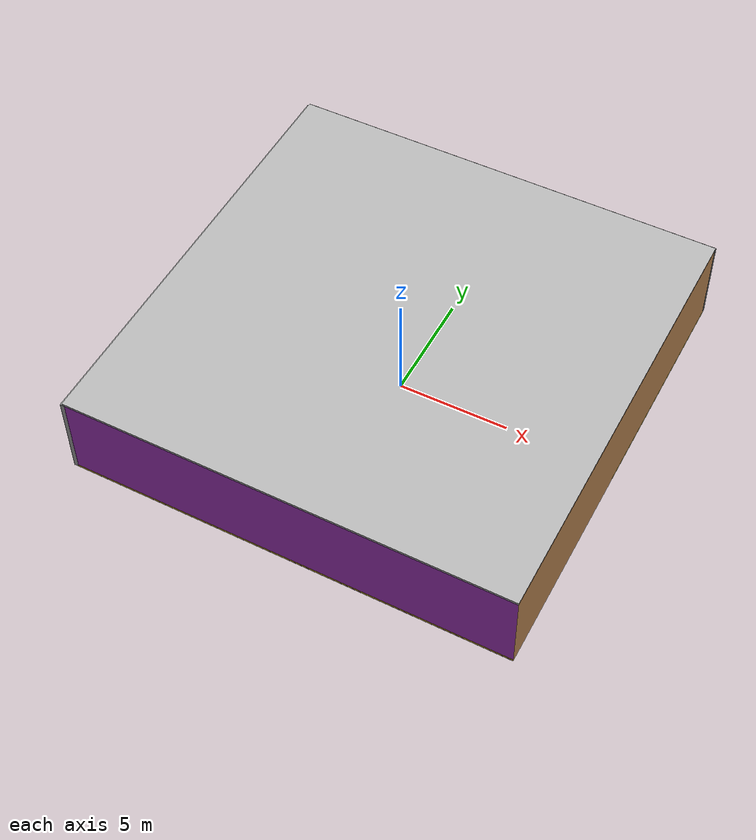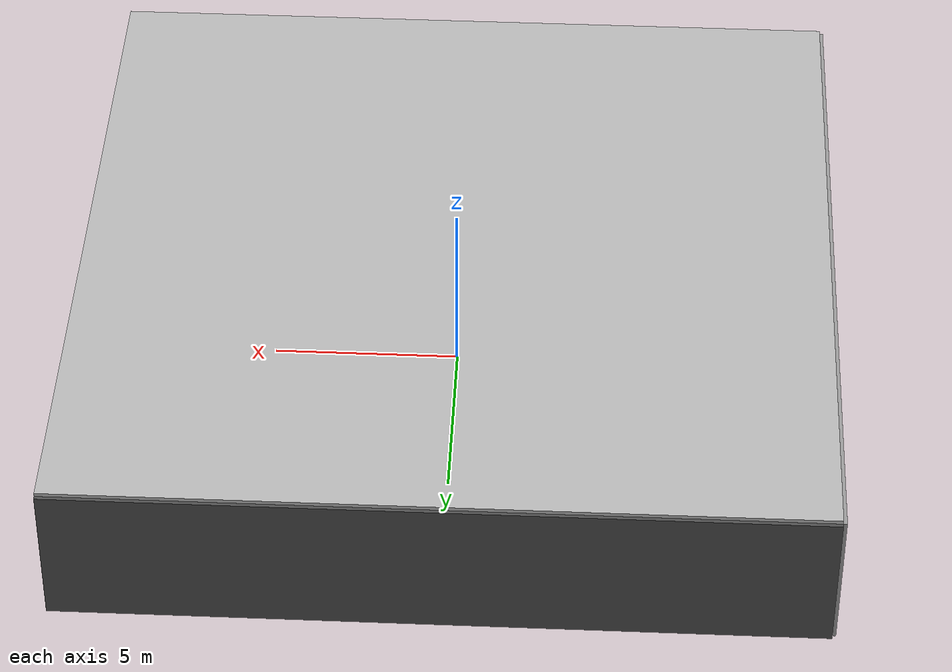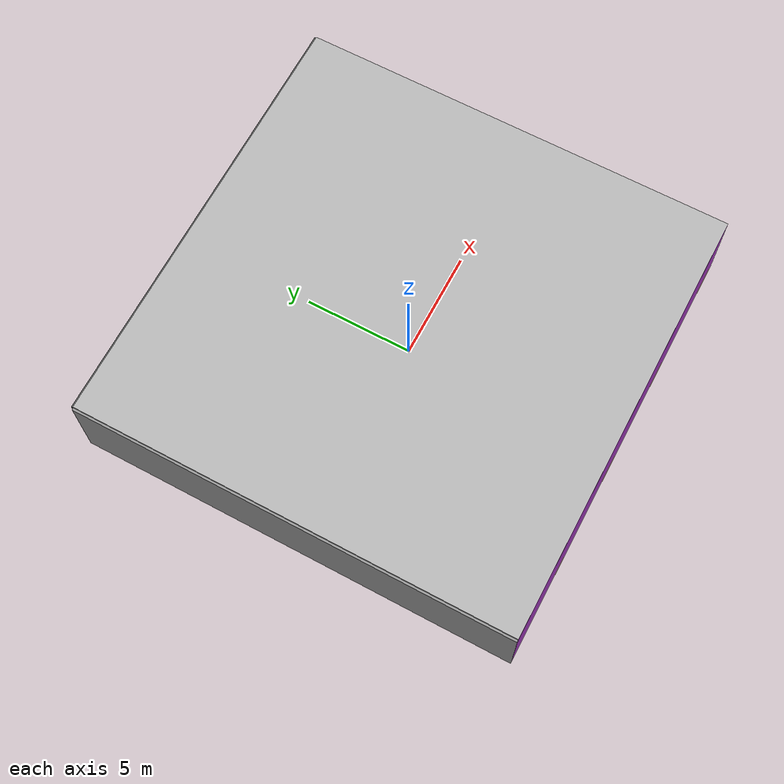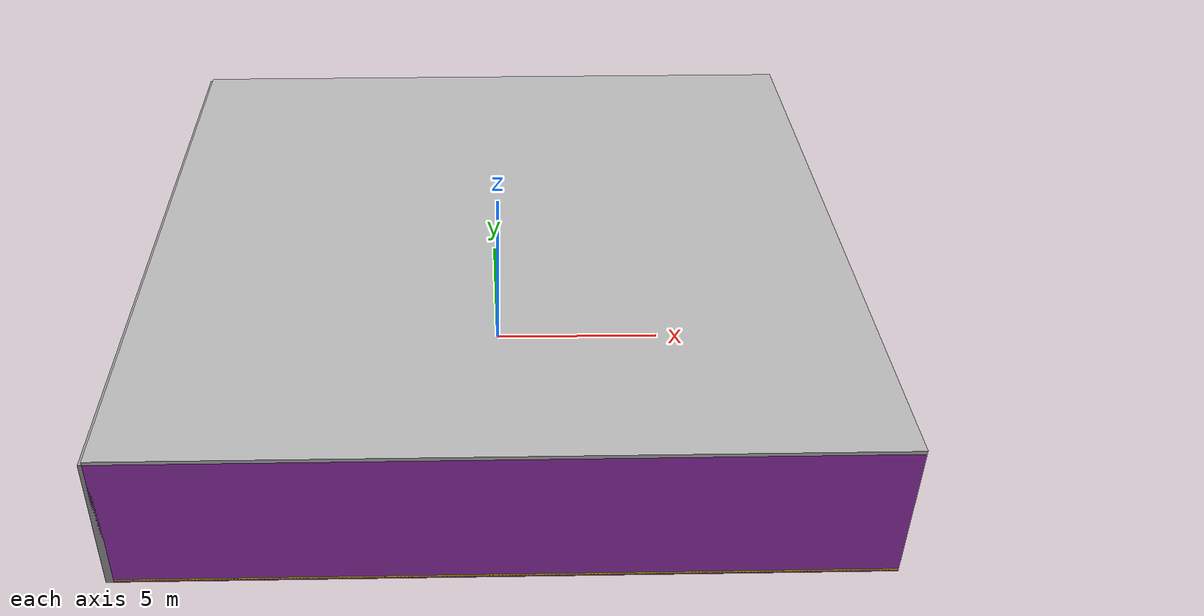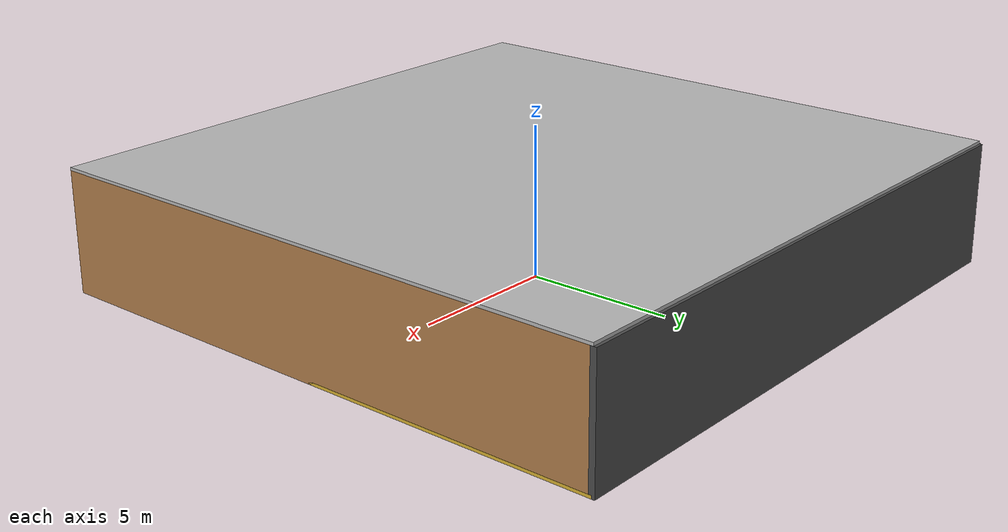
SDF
<sdf version="1.4">
 <world name="default">
  <physics type="ode">
   <max_step_size>0.001</max_step_size>
   <real_time_factor>1</real_time_factor>
   <real_time_update_rate>1000</real_time_update_rate>
   <gravity>0 0 -9.8</gravity>
  </physics>
  <scene><ambient>0.4 0.4 0.4 1</ambient><background>0.7 0.7 0.7 1</background><shadows>1</shadows></scene>
  <model name="Surrounding">
   <static>1</static>
   <link name="Ceiling">
    <collision name="Ceiling_Collision"><geometry><box><size>20 20 0.1</size></box></geometry></collision>
    <visual name="Ceiling_Visual">
     <geometry><box><size>20 20 0.1</size></box></geometry>
     <material>
      <script><uri>file://media/materials/scripts/gazebo.material</uri><name>Gazebo/LightOn</name></script>
     </material>
    </visual>
    <pose>0 0 4.05 0 0 0</pose>
   </link>
   <link name="Wall_South">
    <collision name="Wall_South_Collision">
     <geometry><box><size>20 0 4</size></box></geometry>
     <pose>0 0 2 0 -0 0</pose>
    </collision>
    <visual name="Wall_South_Visual">
     <pose>0 0 2 0 -0 0</pose>
     <geometry><box><size>20 0 4</size></box></geometry>
     <material>
      <script><uri>file://media/materials/scripts/gazebo.material</uri><name>Gazebo/PurpleGlow</name></script>
     </material>
    </visual>
    <velocity_decay><linear>0</linear><angular>0</angular></velocity_decay>
    <pose>0 -10 0 0 -0 0</pose>
   </link>
   <link name="Wall_East">
    <collision name="Wall_21_Collision">
     <geometry><box><size>20 0 4</size></box></geometry>
     <pose>0 0 2 0 -0 0</pose>
    </collision>
    <visual name="Wall_21_Visual">
     <pose>0 0 2 0 -0 0</pose>
     <geometry><box><size>20 0 4</size></box></geometry>
     <material>
      <script><uri>file://media/materials/scripts/gazebo.material</uri><name>Gazebo/WoodFloor</name></script>
     </material>
    </visual>
    <velocity_decay><linear>0</linear><angular>0</angular></velocity_decay>
    <pose>10 0 0 0 -0 1.5708</pose>
   </link>
   <link name="Wall_North">
    <collision name="Wall_22_Collision">
     <geometry><box><size>20 0.2 4</size></box></geometry>
     <pose>0 0 2 0 -0 0</pose>
    </collision>
    <visual name="Wall_22_Visual">
     <pose>0 0 2 0 -0 0</pose>
     <geometry><box><size>20 0.2 4</size></box></geometry>
     <material>
      <script><uri>file://media/materials/scripts/gazebo.material</uri><name>Gazebo/Road</name></script>
     </material>
    </visual>
    <velocity_decay><linear>0</linear><angular>0</angular></velocity_decay>
    <pose>0 10 0 0 -0 0</pose>
   </link>
   <link name="Wall_West">
    <collision name="Wall_23_Collision">
     <geometry><box><size>20 0.2 4</size></box></geometry>
     <pose>0 0 2 0 -0 0</pose>
    </collision>
    <visual name="Wall_23_Visual">
     <pose>0 0 2 0 -0 0</pose>
     <geometry><box><size>20 0.2 4</size></box></geometry>
     <material>
      <script><uri>file://media/materials/scripts/gazebo.material</uri><name>Gazebo/Grey</name></script>
     </material>
    </visual>
    <velocity_decay><linear>0</linear><angular>0</angular></velocity_decay>
    <pose>-10 0 0 0 0 -1.5708</pose>
   </link>
   <link name="Ground_link">
    <collision name="collision">
     <pose>0 0 .05 0 -0 0</pose>
     <geometry><box><size>20 20 0.1</size></box></geometry>
    </collision>
    <visual name="visual">
     <pose>0 0 .05 0 -0 0</pose>
     <geometry><box><size>20 20 0.1</size></box></geometry>
     <material>
      <script><uri>file://media/materials/scripts/gazebo.material</uri><name>Gazebo/Gold</name></script>
     </material>
    </visual>
   </link>
   <static>1</static>
  </model>
  <spherical_coordinates>
   <surface_model>EARTH_WGS84</surface_model>
   <latitude_deg>0</latitude_deg>
   <longitude_deg>0</longitude_deg>
   <elevation>0</elevation>
   <heading_deg>0</heading_deg>
  </spherical_coordinates>
  <light name="lightball_0" type="diffuse">
   <diffuse>0.8 0.8 0.8 1</diffuse>
   <specular>0.2 0.2 0.2 1</specular>
   <attenuation>
    <range>100</range>
    <constant>0.7</constant>
    <linear>0.01</linear>
    <quadratic>0.001</quadratic>
   </attenuation>
   <direction>-0.5 0.1 -0.9</direction>
   <pose>-2.57076439839 -0.0477192972934 1.4713828222 0 0 0</pose>
  </light>
  <light name="lightball_1" type="diffuse">
   <diffuse>0.8 0.8 0.8 1</diffuse>
   <specular>0.2 0.2 0.2 1</specular>
   <attenuation>
    <range>100</range>
    <constant>0.7</constant>
    <linear>0.01</linear>
    <quadratic>0.001</quadratic>
   </attenuation>
   <direction>-0.5 0.1 -0.9</direction>
   <pose>-5.52417222876 -6.21645763332 2.57768193955 0 0 0</pose>
  </light>
  <light name="lightball_2" type="diffuse">
   <diffuse>0.8 0.8 0.8 1</diffuse>
   <specular>0.2 0.2 0.2 1</specular>
   <attenuation>
    <range>100</range>
    <constant>0.7</constant>
    <linear>0.01</linear>
    <quadratic>0.001</quadratic>
   </attenuation>
   <direction>-0.5 0.1 -0.9</direction>
   <pose>-7.35974313259 -7.47540799355 2.88469059816 0 0 0</pose>
  </light>
  <light name="lightball_3" type="diffuse">
   <diffuse>0.8 0.8 0.8 1</diffuse>
   <specular>0.2 0.2 0.2 1</specular>
   <attenuation>
    <range>100</range>
    <constant>0.7</constant>
    <linear>0.01</linear>
    <quadratic>0.001</quadratic>
   </attenuation>
   <direction>-0.5 0.1 -0.9</direction>
   <pose>-4.27449939966 -6.03997463012 1.071320846 0 0 0</pose>
  </light>
  <light name="lightball_4" type="diffuse">
   <diffuse>0.8 0.8 0.8 1</diffuse>
   <specular>0.2 0.2 0.2 1</specular>
   <attenuation>
    <range>100</range>
    <constant>0.7</constant>
    <linear>0.01</linear>
    <quadratic>0.001</quadratic>
   </attenuation>
   <direction>-0.5 0.1 -0.9</direction>
   <pose>-5.19068144139 7.87620647723 2.66474653725 0 0 0</pose>
  </light>
  <light name="lightball_5" type="diffuse">
   <diffuse>0.8 0.8 0.8 1</diffuse>
   <specular>0.2 0.2 0.2 1</specular>
   <attenuation>
    <range>100</range>
    <constant>0.7</constant>
    <linear>0.01</linear>
    <quadratic>0.001</quadratic>
   </attenuation>
   <direction>-0.5 0.1 -0.9</direction>
   <pose>-2.61588134405 -3.34223212655 2.79357336067 0 0 0</pose>
  </light>
  <include>
   <uri>model://robocup_3Dsim_goal</uri>
   <pose>-6.66195624178 1.86271854515 0 0 0 2.43463278231</pose>
  </include>
  <include><uri>model://table</uri><pose>-2.15272163587 -6.55067857875 0 0 0 1.92701023246</pose></include>
  <include>
   <uri>model://textured_shapes</uri>
   <pose>0.866307550175 -4.19712374311 0 0 0 0.454948023856</pose>
  </include>
  <include>
   <uri>model://construction_cone</uri>
   <pose>5.26655471509 4.14113895719 0 0 0 2.28348935558</pose>
  </include>
  <include><uri>model://cabinet</uri><pose>7.90277970903 0.446555633854 0 0 0 0.22822760071</pose></include>
 </world>
</sdf>

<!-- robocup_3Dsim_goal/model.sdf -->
<sdf version="1.5">
  <model name="robocup_3d_goal">
    <static>true</static>
    <link name="left_post">
      <pose>0 1.05 0.45 0 0 0</pose>
      <collision name="collision">
        <geometry>
          <cylinder>
            <radius>0.05</radius>
            <length>0.9</length>
          </cylinder>
        </geometry>
      </collision>
      <visual name="visual">
        <geometry>
          <cylinder>
            <radius>0.05</radius>
            <length>0.9</length>
          </cylinder>
        </geometry>
        <material>
          <script>
            <uri>file://media/materials/scripts/gazebo.material</uri>
            <name>Gazebo/ZincYellow</name>
          </script>
        </material>
      </visual>
    </link>
    <link name="left_support_horiz_lower">
      <pose>0.30 1.05 0.01 0 0 0</pose>
      <collision name="collision">
        <geometry>
          <box>
            <size>0.50 0.02 0.02</size>
          </box>
        </geometry>
      </collision>
      <visual name="visual">
        <geometry>
          <box>
            <size>0.50 0.02 0.02</size>
          </box>
        </geometry>
        <material>
          <script>
            <uri>file://media/materials/scripts/gazebo.material</uri>
            <name>Gazebo/White</name>
          </script>
        </material>
      </visual>
    </link>
    <link name="left_support_horiz_upper">
      <pose>0.30 1.05 0.79 0 0 0</pose>
      <collision name="collision">
        <geometry>
          <box>
            <size>0.50 0.02 0.02</size>
          </box>
        </geometry>
      </collision>
      <visual name="visual">
        <geometry>
          <box>
            <size>0.50 0.02 0.02</size>
          </box>
        </geometry>
        <material>
          <script>
            <uri>file://media/materials/scripts/gazebo.material</uri>
            <name>Gazebo/White</name>
          </script>
        </material>
      </visual>
    </link>
    <link name="left_support_vertical">
      <pose>0.56 1.05 0.4 0 1.5708 0</pose>
      <collision name="collision">
        <geometry>
          <box>
            <size>0.80 0.02 0.02</size>
          </box>
        </geometry>
      </collision>
      <visual name="visual">
        <geometry>
          <box>
            <size>0.80 0.02 0.02</size>
          </box>
        </geometry>
        <material>
          <script>
            <uri>file://media/materials/scripts/gazebo.material</uri>
            <name>Gazebo/White</name>
          </script>
        </material>
      </visual>
    </link>
    <link name="right_support_horiz_lower">
      <pose>0.30 -1.05 0.01 0 0 0</pose>
      <collision name="collision">
        <geometry>
          <box>
            <size>0.50 0.02 0.02</size>
          </box>
        </geometry>
      </collision>
      <visual name="visual">
        <geometry>
          <box>
            <size>0.50 0.02 0.02</size>
          </box>
        </geometry>
        <material>
          <script>
            <uri>file://media/materials/scripts/gazebo.material</uri>
            <name>Gazebo/White</name>
          </script>
        </material>
      </visual>
    </link>
    <link name="right_support_horiz_upper">
      <pose>0.30 -1.05 0.79 0 0 0</pose>
      <collision name="collision">
        <geometry>
          <box>
            <size>0.50 0.02 0.02</size>
          </box>
        </geometry>
      </collision>
      <visual name="visual">
        <geometry>
          <box>
            <size>0.50 0.02 0.02</size>
          </box>
        </geometry>
        <material>
          <script>
            <uri>file://media/materials/scripts/gazebo.material</uri>
            <name>Gazebo/White</name>
          </script>
        </material>
      </visual>
    </link>
    <link name="right_support_vertical">
      <pose>0.56 -1.05 0.4 0 1.5708 0</pose>
      <collision name="collision">
        <geometry>
          <box>
            <size>0.80 0.02 0.02</size>
          </box>
        </geometry>
      </collision>
      <visual name="visual">
        <geometry>
          <box>
            <size>0.80 0.02 0.02</size>
          </box>
        </geometry>
        <material>
          <script>
            <uri>file://media/materials/scripts/gazebo.material</uri>
            <name>Gazebo/White</name>
          </script>
        </material>
      </visual>
    </link>
    <link name="center_support_horiz_lower">
      <pose>0.56 0 0.01 0 1.5708 0</pose>
      <collision name="collision">
        <geometry>
          <box>
            <size>0.02 2.08 0.02</size>
          </box>
        </geometry>
      </collision>
      <visual name="visual">
        <geometry>
          <box>
            <size>0.02 2.08 0.02</size>
          </box>
        </geometry>
        <material>
          <script>
            <uri>file://media/materials/scripts/gazebo.material</uri>
            <name>Gazebo/White</name>
          </script>
        </material>
      </visual>
    </link>
    <link name="center_support_horiz_upper">
      <pose>0.56 0 0.79 0 1.5708 0</pose>
      <collision name="collision">
        <geometry>
          <box>
            <size>0.02 2.08 0.02</size>
          </box>
        </geometry>
      </collision>
      <visual name="visual">
        <geometry>
          <box>
            <size>0.02 2.08 0.02</size>
          </box>
        </geometry>
        <material>
          <script>
            <uri>file://media/materials/scripts/gazebo.material</uri>
            <name>Gazebo/White</name>
          </script>
        </material>
      </visual>
    </link>
    <link name="right_post">
      <pose>0 -1.05 0.45 0 0 0</pose>
      <collision name="collision">
        <geometry>
          <cylinder>
            <radius>0.05</radius>
            <length>0.9</length>
          </cylinder>
        </geometry>
      </collision>
      <visual name="visual">
        <geometry>
          <cylinder>
            <radius>0.05</radius>
            <length>0.9</length>
          </cylinder>
        </geometry>
        <material>
          <script>
            <uri>file://media/materials/scripts/gazebo.material</uri>
            <name>Gazebo/ZincYellow</name>
          </script>
        </material>
      </visual>
    </link>
    <link name="crossbar">
      <pose>0 0 0.85 1.57 1.57 0</pose>
      <collision name="collision">
        <geometry>
          <cylinder>
            <radius>0.05</radius>
            <length>2.0</length>
          </cylinder>
        </geometry>
      </collision>
      <visual name="visual">
        <geometry>
          <cylinder>
            <radius>0.05</radius>
            <length>2.0</length>
          </cylinder>
        </geometry>
        <material>
          <script>
            <uri>file://media/materials/scripts/gazebo.material</uri>
            <name>Gazebo/ZincYellow</name>
          </script>
        </material>
      </visual>
    </link>
    <link name="center_net">
      <pose>0.56 0 0.40 0 0 0</pose>
      <collision name="collision">
        <geometry>
          <box>
            <size>0.01 2.1 0.80</size>
          </box>
        </geometry>
      </collision>
      <visual name="visual">
        <geometry>
          <box>
            <size>0.01 2.1 0.80</size>
          </box>
        </geometry>
        <material>
          <script>
            <uri>model://../model_source/models/robocup09_spl_field/materials/scripts/</uri>
            <uri>model://../model_source/models/robocup09_spl_field/materials/textures/</uri>
            <name>RoboCup/Net</name>
          </script>
        </material>
      </visual>
    </link>
    <link name="left_net">
      <pose>0.30 1.05 0.40 0 0 0</pose>
      <collision name="collision">
        <geometry>
          <box>
            <size>0.50 0.01 0.76</size>
          </box>
        </geometry>
      </collision>
      <visual name="visual">
        <geometry>
          <box>
            <size>0.50 0.01 0.76</size>
          </box>
        </geometry>
        <material>
          <script>
            <uri>model://../model_source/models/robocup09_spl_field/materials/scripts/</uri>
            <uri>model://../model_source/models/robocup09_spl_field/materials/textures/</uri>
            <name>RoboCup/Net</name>
          </script>
        </material>
      </visual>
    </link>
    <link name="right_net">
      <pose>0.30 -1.05 0.40 0 0 0</pose>
      <collision name="collision">
        <geometry>
          <box>
            <size>0.50 0.01 0.76</size>
          </box>
        </geometry>
      </collision>
      <visual name="visual">
        <geometry>
          <box>
            <size>0.50 0.01 0.76</size>
          </box>
        </geometry>
        <material>
          <script>
            <uri>model://../model_source/models/robocup09_spl_field/materials/scripts/</uri>
            <uri>model://../model_source/models/robocup09_spl_field/materials/textures/</uri>
            <name>RoboCup/Net</name>
          </script>
        </material>
      </visual>
    </link>
  </model>
</sdf>

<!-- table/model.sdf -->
<sdf version="1.5">
  <model name="table">
    <static>true</static>
    <link name="link">
      <collision name="surface">
        <pose>0 0 1.0 0 0 0</pose>
        <geometry>
          <box>
            <size>1.5 0.8 0.03</size>
          </box>
        </geometry>
        <surface>
          <friction>
            <ode>
              <mu>0.6</mu>
              <mu2>0.6</mu2>
            </ode>
          </friction>
        </surface>
      </collision>
      <visual name="visual1">
        <pose>0 0 1.0 0 0 0</pose>
        <geometry>
          <box>
            <size>1.5 0.8 0.03</size>
          </box>
        </geometry>
        <material>
          <script>
            <uri>model://media/materials/scripts/gazebo.material</uri>
            <name>Gazebo/Wood</name>
          </script>
        </material>
      </visual>
      <collision name="front_left_leg">
        <pose>0.68 0.38 0.5 0 0 0</pose>
        <geometry>
          <cylinder>
            <radius>0.02</radius>
            <length>1.0</length>
          </cylinder>
        </geometry>
      </collision>
      <visual name="front_left_leg">
        <pose>0.68 0.38 0.5 0 0 0</pose>
        <geometry>
          <cylinder>
            <radius>0.02</radius>
            <length>1.0</length>
          </cylinder>
        </geometry>
        <material>
          <script>
            <uri>model://media/materials/scripts/gazebo.material</uri>
            <name>Gazebo/Grey</name>
          </script>
        </material>
      </visual>
      <collision name="front_right_leg">
        <pose>0.68 -0.38 0.5 0 0 0</pose>
        <geometry>
          <cylinder>
            <radius>0.02</radius>
            <length>1.0</length>
          </cylinder>
        </geometry>
      </collision>
      <visual name="front_right_leg">
        <pose>0.68 -0.38 0.5 0 0 0</pose>
        <geometry>
          <cylinder>
            <radius>0.02</radius>
            <length>1.0</length>
          </cylinder>
        </geometry>
        <material>
          <script>
            <uri>model://media/materials/scripts/gazebo.material</uri>
            <name>Gazebo/Grey</name>
          </script>
        </material>
      </visual>
      <collision name="back_right_leg">
        <pose>-0.68 -0.38 0.5 0 0 0</pose>
        <geometry>
          <cylinder>
            <radius>0.02</radius>
            <length>1.0</length>
          </cylinder>
        </geometry>
      </collision>
      <visual name="back_right_leg">
        <pose>-0.68 -0.38 0.5 0 0 0</pose>
        <geometry>
          <cylinder>
            <radius>0.02</radius>
            <length>1.0</length>
          </cylinder>
        </geometry>
        <material>
          <script>
            <uri>model://media/materials/scripts/gazebo.material</uri>
            <name>Gazebo/Grey</name>
          </script>
        </material>
      </visual>
      <collision name="back_left_leg">
        <pose>-0.68 0.38 0.5 0 0 0</pose>
        <geometry>
          <cylinder>
            <radius>0.02</radius>
            <length>1.0</length>
          </cylinder>
        </geometry>
      </collision>
      <visual name="back_left_leg">
        <pose>-0.68 0.38 0.5 0 0 0</pose>
        <geometry>
          <cylinder>
            <radius>0.02</radius>
            <length>1.0</length>
          </cylinder>
        </geometry>
        <material>
          <script>
            <uri>model://media/materials/scripts/gazebo.material</uri>
            <name>Gazebo/Grey</name>
          </script>
        </material>
      </visual>
    </link>
  </model>
</sdf>

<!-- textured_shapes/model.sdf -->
<sdf version="1.6">
  <model name="textured_shapes">
    <pose>0 0 0.5 0 0 0</pose>
    <link name="box">
      <pose>0 -1.5 0 0 0 0</pose>
      <collision name="collision">
        <geometry>
          <box>
            <size>1 1 1</size>
          </box>
        </geometry>
      </collision>
      <visual name="visual">
        <geometry>
          <box>
            <size>1 1 1</size>
          </box>
        </geometry>
        <material>
          <script>
            <uri>model://../model_source/models/textured_shapes/materials/scripts</uri>
            <uri>model://../model_source/models/textured_shapes/materials/textures</uri>
            <name>TexturedShape/Squares</name>
          </script>
        </material>
      </visual>
    </link>
    <link name="sphere">
      <collision name="collision">
        <geometry>
          <sphere>
            <radius>0.5</radius>
          </sphere>
        </geometry>
      </collision>
      <visual name="visual">
        <geometry>
          <sphere>
            <radius>0.5</radius>
          </sphere>
        </geometry>
        <material>
          <script>
            <uri>model://../model_source/models/textured_shapes/materials/scripts</uri>
            <uri>model://../model_source/models/textured_shapes/materials/textures</uri>
            <name>TexturedShape/Squares</name>
          </script>
        </material>
      </visual>
    </link>
    <link name="cylinder">
      <pose>0 1.5 0 0 0 0</pose>
      <collision name="collision">
        <geometry>
          <cylinder>
            <radius>0.5</radius>
            <length>1</length>
          </cylinder>
        </geometry>
      </collision>
      <visual name="visual">
        <geometry>
          <cylinder>
            <radius>0.5</radius>
            <length>1</length>
          </cylinder>
        </geometry>
        <material>
          <script>
            <uri>model://../model_source/models/textured_shapes/materials/scripts</uri>
            <uri>model://../model_source/models/textured_shapes/materials/textures</uri>
            <name>TexturedShape/Squares</name>
          </script>
        </material>
      </visual>
    </link>
  </model>
</sdf>

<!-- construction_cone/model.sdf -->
<sdf version="1.5">
  <model name="Construction Cone">
    <link name="link">
      <collision name="collision">
        <geometry>
          <mesh>
            <scale>10 10 10</scale>
            <uri>file://isr-testbed/construction_cone/meshes/construction_cone.dae</uri>
          </mesh>
        </geometry>
      </collision>
      <visual name="visual">
        <geometry>
          <mesh>
            <scale>10 10 10</scale>
            <uri>file://isr-testbed/construction_cone/meshes/construction_cone.dae</uri>
          </mesh>
        </geometry>
      </visual>
    </link>
  </model>
</sdf>

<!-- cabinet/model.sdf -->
<sdf version="1.5">
  <model name="cabinet">
    <static>true</static>
    <link name="cabinet_bottom_plate">
      <inertial>
        <pose>0 0 -1 0 0 0</pose>
        <inertia>
          <ixx>2.050000</ixx>
          <ixy>0</ixy>
          <ixz>0</ixz>
          <iyy>2.050000</iyy>
          <iyz>0</iyz>
          <izz>2.050000</izz>
        </inertia>
        <mass>25.000000</mass>
      </inertial>
      <collision name="cabinet_bottom_plate_geom">
        <pose>0 0 0.010000 0 0 0</pose>
        <geometry>
          <box>
            <size>0.450000 0.450000 0.020000</size>
          </box>
        </geometry>
      </collision>
      <visual name="cabinet_bottom_plate_geom_visual">
        <pose>0 0 0.010000 0 0 0</pose>
        <geometry>
          <box>
            <size>0.450000 0.450000 0.020000</size>
          </box>
        </geometry>
        <material>
          <script>
            <uri>model://media/materials/scripts/gazebo.material</uri>
            <name>Gazebo/Wood</name>
          </script>
        </material>
      </visual>
      <collision name="cabinet_bottom_plate_geom_cabinet_back_plate">
        <pose>0.235000 0 0.510000 0 0 0</pose>
        <geometry>
          <box>
            <size>0.020000 0.450000 1.020000</size>
          </box>
        </geometry>
      </collision>
      <visual name="cabinet_bottom_plate_geom_cabinet_back_plate_visual">
        <pose>0.235000 0 0.510000 0 0 0</pose>
        <geometry>
          <box>
            <size>0.020000 0.450000 1.020000</size>
          </box>
        </geometry>
        <material>
          <script>
            <uri>model://media/materials/scripts/gazebo.material</uri>
            <name>Gazebo/Wood</name>
          </script>
        </material>
      </visual>
      <collision name="cabinet_bottom_plate_geom_cabinet_left_plate">
        <pose>0 0.235000 0.510000 0 0 0</pose>
        <geometry>
          <box>
            <size>0.450000 0.020000 1.020000</size>
          </box>
        </geometry>
      </collision>
      <visual name="cabinet_bottom_plate_geom_cabinet_left_plate_visual">
        <pose>0 0.235000 0.510000 0 0 0</pose>
        <geometry>
          <box>
            <size>0.450000 0.020000 1.020000</size>
          </box>
        </geometry>
        <material>
          <script>
            <uri>model://media/materials/scripts/gazebo.material</uri>
            <name>Gazebo/Wood</name>
          </script>
        </material>
      </visual>
      <collision name="cabinet_bottom_plate_geom_cabinet_middle_plate">
        <pose>0 0 0.510000 0 0 0</pose>
        <geometry>
          <box>
            <size>0.450000 0.450000 0.020000</size>
          </box>
        </geometry>
      </collision>
      <visual name="cabinet_bottom_plate_geom_cabinet_middle_plate_visual">
        <pose>0 0 0.510000 0 0 0</pose>
        <geometry>
          <box>
            <size>0.450000 0.450000 0.020000</size>
          </box>
        </geometry>
        <material>
          <script>
            <uri>model://media/materials/scripts/gazebo.material</uri>
            <name>Gazebo/Wood</name>
          </script>
        </material>
      </visual>
      <collision name="cabinet_bottom_plate_geom_cabinet_right_plate">
        <pose>0 -0.235000 0.510000 0 0 0</pose>
        <geometry>
          <box>
            <size>0.450000 0.020000 1.020000</size>
          </box>
        </geometry>
      </collision>
      <visual name="cabinet_bottom_plate_geom_cabinet_right_plate_visual">
        <pose>0 -0.235000 0.510000 0 0 0</pose>
        <geometry>
          <box>
            <size>0.450000 0.020000 1.020000</size>
          </box>
        </geometry>
        <material>
          <script>
            <uri>model://media/materials/scripts/gazebo.material</uri>
            <name>Gazebo/Wood</name>
          </script>
        </material>
      </visual>
      <collision name="cabinet_bottom_plate_geom_cabinet_top_plate">
        <pose>0 0 1.010000 0 0 0</pose>
        <geometry>
          <box>
            <size>0.450000 0.450000 0.020000</size>
          </box>
        </geometry>
      </collision>
      <visual name="cabinet_bottom_plate_geom_cabinet_top_plate_visual">
        <pose>0 0 1.010000 0 0 0</pose>
        <geometry>
          <box>
            <size>0.450000 0.450000 0.020000</size>
          </box>
        </geometry>
        <material>
          <script>
            <uri>model://media/materials/scripts/gazebo.material</uri>
            <name>Gazebo/Wood</name>
          </script>
        </material>
      </visual>
    </link>
  </model>
</sdf>
